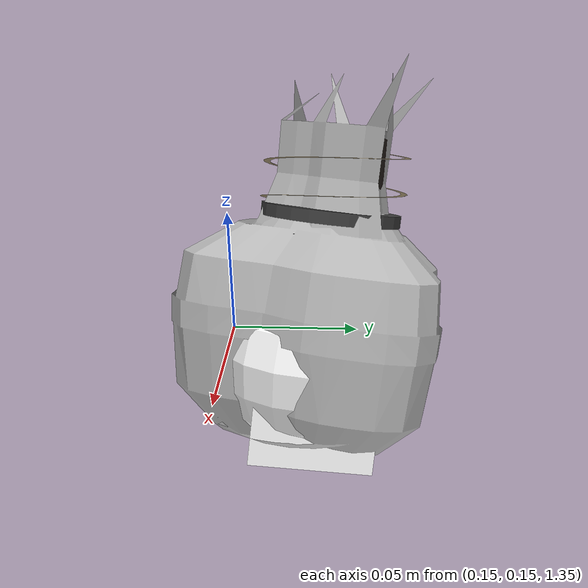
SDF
<sdf version="1.11">
 <world name="peach_orchard">
  <model name="ground">
   <static>true</static>
   <link name="link">
    <visual name="soil">
     <geometry><plane><normal>0 0 1</normal><size>32 22</size></plane></geometry>
     <material>
      <ambient>1 1 1 1</ambient>
      <diffuse>1 1 1 1</diffuse>
      <specular>0.1 0.1 0.1 1</specular>
      <pbr>
       <metal>
        <albedo_map>textures/soil_albedo.png</albedo_map>
        <normal_map type="tangent">textures/soil_normal.png</normal_map>
        <roughness>0.95</roughness>
        <metalness>0</metalness>
       </metal>
      </pbr>
     </material>
    </visual>
    <collision name="c_soil">
     <geometry><plane><normal>0 0 1</normal><size>32 22</size></plane></geometry>
    </collision>
   </link>
  </model>
  <model name="peach_tree_r2_t3_06">
   <pose>0.22 0.182762 1.35676 0 0.348057 2.85293</pose>
   <static>true</static>
   <link name="bag">
    <visual name="bag_mesh">
     <pose>0 0 0.045937 0 0 0</pose>
     <geometry>
      <mesh><uri>model://peach_sim/meshes/bagged_peach.glb</uri><scale>0.947769 1.1044 1.04402</scale></mesh>
     </geometry>
    </visual>
    <visual name="body">
     <pose>0 0 0.027937 0 0 0</pose>
     <geometry><ellipsoid><radii>0.0355413 0.0287144 0.0301719</radii></ellipsoid></geometry>
     <material>
      <ambient>1 1 1 1</ambient>
      <diffuse>1 1 1 1</diffuse>
      <specular>0.1 0.1 0.1 1</specular>
      <pbr>
       <metal>
        <albedo_map>textures/paper_bag_albedo.png</albedo_map>
        <normal_map type="tangent">textures/paper_bag_normal.png</normal_map>
        <roughness>0.72</roughness>
        <metalness>0</metalness>
       </metal>
      </pbr>
     </material>
    </visual>
    <visual name="bottom_fold">
     <pose>0 0 0.012 0 0 0.35</pose>
     <geometry><box><size>0.0550891 0.0330215 0.022</size></box></geometry>
     <material>
      <ambient>1 1 1 1</ambient>
      <diffuse>1 1 1 1</diffuse>
      <specular>0.1 0.1 0.1 1</specular>
      <pbr>
       <metal>
        <albedo_map>textures/paper_bag_albedo.png</albedo_map>
        <normal_map type="tangent">textures/paper_bag_normal.png</normal_map>
        <roughness>0.8</roughness>
        <metalness>0</metalness>
       </metal>
      </pbr>
     </material>
    </visual>
    <visual name="fruit">
     <pose>0 0 0.0215158 0 0 0</pose>
     <geometry><sphere><radius>0.0286164</radius></sphere></geometry>
     <material>
      <ambient>1 1 1 1</ambient>
      <diffuse>1 1 1 1</diffuse>
      <specular>0.1 0.1 0.1 1</specular>
      <pbr>
       <metal>
        <albedo_map>textures/fruit_skin_albedo.png</albedo_map>
        <normal_map type="tangent">textures/fruit_skin_normal.png</normal_map>
        <roughness>0.55</roughness>
        <metalness>0</metalness>
       </metal>
      </pbr>
     </material>
    </visual>
    <visual name="neck">
     <pose>0 0 0.0648739 0 0 0</pose>
     <geometry><cylinder><radius>0.013</radius><length>0.018</length></cylinder></geometry>
     <material>
      <ambient>1 1 1 1</ambient>
      <diffuse>1 1 1 1</diffuse>
      <specular>0.1 0.1 0.1 1</specular>
      <pbr>
       <metal>
        <albedo_map>textures/paper_bag_albedo.png</albedo_map>
        <normal_map type="tangent">textures/paper_bag_normal.png</normal_map>
        <roughness>0.75</roughness>
        <metalness>0</metalness>
       </metal>
      </pbr>
     </material>
    </visual>
    <visual name="gather">
     <pose>0 0 0.0458739 0 0 0</pose>
     <geometry><cylinder><radius>0.019</radius><length>0.02</length></cylinder></geometry>
     <material>
      <ambient>1 1 1 1</ambient>
      <diffuse>1 1 1 1</diffuse>
      <specular>0.1 0.1 0.1 1</specular>
      <pbr>
       <metal>
        <albedo_map>textures/paper_bag_albedo.png</albedo_map>
        <normal_map type="tangent">textures/paper_bag_normal.png</normal_map>
        <roughness>0.8</roughness>
        <metalness>0</metalness>
       </metal>
      </pbr>
     </material>
    </visual>
    <visual name="inner_paper">
     <pose>0 0 0.0698739 0 0 0</pose>
     <geometry><cylinder><radius>0.01</radius><length>0.008</length></cylinder></geometry>
     <material>
      <ambient>0.180392 0.14902 0.133333 1</ambient>
      <diffuse>0.180392 0.14902 0.133333 1</diffuse>
      <specular>0.1 0.1 0.1 1</specular>
     </material>
    </visual>
    <visual name="wire_0">
     <pose>0 0 0.0598739 0 0 0</pose>
     <geometry><cylinder><radius>0.0205</radius><length>0.0035</length></cylinder></geometry>
     <material>
      <ambient>0.25 0.25 0.25 1</ambient>
      <diffuse>0.25 0.25 0.25 1</diffuse>
      <specular>0.1 0.1 0.1 1</specular>
     </material>
    </visual>
    <visual name="wire_1">
     <pose>0 0 0.0668739 0 0 0</pose>
     <geometry><cylinder><radius>0.0205</radius><length>0.0035</length></cylinder></geometry>
     <material>
      <ambient>0.25 0.25 0.25 1</ambient>
      <diffuse>0.25 0.25 0.25 1</diffuse>
      <specular>0.1 0.1 0.1 1</specular>
     </material>
    </visual>
    <visual name="wire_tail">
     <pose>0.01 0 0.0678739 0 0.521618 0</pose>
     <geometry><cylinder><radius>0.0012</radius><length>0.026</length></cylinder></geometry>
     <material>
      <ambient>0.25 0.25 0.25 1</ambient>
      <diffuse>0.25 0.25 0.25 1</diffuse>
      <specular>0.1 0.1 0.1 1</specular>
     </material>
    </visual>
    <collision name="c_body">
     <pose>0 0 0.027937 0 0 0</pose>
     <geometry><cylinder><radius>0.0355413</radius><length>0.0558739</length></cylinder></geometry>
    </collision>
   </link>
  </model>
 </world>
</sdf>
